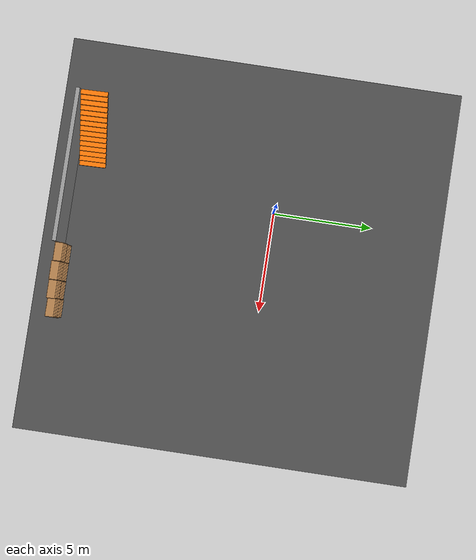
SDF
<sdf version="1.6">
 <world name="default">
  <model name="ground_plane">
   <static>1</static>
   <link name="link">
    <collision name="collision">
     <geometry><plane><normal>0 0 1</normal><size>100 100</size></plane></geometry>
     <surface>
      <contact><collide_bitmask>65535</collide_bitmask></contact>
      <friction><ode><mu>100</mu><mu2>50</mu2></ode></friction>
     </surface>
    </collision>
    <visual name="visual">
     <cast_shadows>0</cast_shadows>
     <geometry><plane><normal>0 0 1</normal><size>100 100</size></plane></geometry>
     <material>
      <script><uri>file://media/materials/scripts/gazebo.material</uri><name>Gazebo/Grey</name></script>
     </material>
    </visual>
   </link>
  </model>
  <model name="bookshelf">
   <static>1</static>
   <link name="link">
    <inertial><mass>1</mass></inertial>
    <collision name="back">
     <pose>0 0.005 0.6 0 -0 0</pose>
     <geometry><box><size>0.9 0.01 1.2</size></box></geometry>
    </collision>
    <visual name="visual1">
     <pose>0 0.005 0.6 0 -0 0</pose>
     <geometry><box><size>0.9 0.01 1.2</size></box></geometry>
     <material>
      <script><uri>file://media/materials/scripts/gazebo.material</uri><name>Gazebo/Wood</name></script>
     </material>
    </visual>
    <collision name="left_side">
     <pose>0.45 -0.195 0.6 0 -0 0</pose>
     <geometry><box><size>0.02 0.4 1.2</size></box></geometry>
    </collision>
    <visual name="visual2">
     <pose>0.45 -0.195 0.6 0 -0 0</pose>
     <geometry><box><size>0.02 0.4 1.2</size></box></geometry>
     <material>
      <script><uri>file://media/materials/scripts/gazebo.material</uri><name>Gazebo/Wood</name></script>
     </material>
    </visual>
    <collision name="right_side">
     <pose>-0.45 -0.195 0.6 0 -0 0</pose>
     <geometry><box><size>0.02 0.4 1.2</size></box></geometry>
    </collision>
    <visual name="visual3">
     <pose>-0.45 -0.195 0.6 0 -0 0</pose>
     <geometry><box><size>0.02 0.4 1.2</size></box></geometry>
     <material>
      <script><uri>file://media/materials/scripts/gazebo.material</uri><name>Gazebo/Wood</name></script>
     </material>
    </visual>
    <collision name="bottom">
     <pose>0 -0.195 0.03 0 -0 0</pose>
     <geometry><box><size>0.88 0.4 0.06</size></box></geometry>
    </collision>
    <visual name="visual4">
     <pose>0 -0.195 0.03 0 -0 0</pose>
     <geometry><box><size>0.88 0.4 0.06</size></box></geometry>
     <material>
      <script><uri>file://media/materials/scripts/gazebo.material</uri><name>Gazebo/Wood</name></script>
     </material>
    </visual>
    <collision name="top">
     <pose>0 -0.195 1.19 0 -0 0</pose>
     <geometry><box><size>0.88 0.4 0.02</size></box></geometry>
    </collision>
    <visual name="visual5">
     <pose>0 -0.195 1.19 0 -0 0</pose>
     <geometry><box><size>0.88 0.4 0.02</size></box></geometry>
     <material>
      <script><uri>file://media/materials/scripts/gazebo.material</uri><name>Gazebo/Wood</name></script>
     </material>
    </visual>
    <collision name="low_shelf">
     <pose>0 -0.195 0.43 0 -0 0</pose>
     <geometry><box><size>0.88 0.4 0.02</size></box></geometry>
    </collision>
    <visual name="visual6">
     <pose>0 -0.195 0.43 0 -0 0</pose>
     <geometry><box><size>0.88 0.4 0.02</size></box></geometry>
     <material>
      <script><uri>file://media/materials/scripts/gazebo.material</uri><name>Gazebo/Wood</name></script>
     </material>
    </visual>
    <collision name="high_shelf">
     <pose>0 -0.195 0.8 0 -0 0</pose>
     <geometry><box><size>0.88 0.4 0.02</size></box></geometry>
    </collision>
    <visual name="visual7">
     <pose>0 -0.195 0.8 0 -0 0</pose>
     <geometry><box><size>0.88 0.4 0.02</size></box></geometry>
     <material>
      <script><uri>file://media/materials/scripts/gazebo.material</uri><name>Gazebo/Wood</name></script>
     </material>
    </visual>
   </link>
   <pose>6.34692 -10.2259 0.027497 0 0 -3.13702</pose>
  </model>
  <model name="bookshelf_clone">
   <static>1</static>
   <link name="link">
    <inertial><mass>1</mass></inertial>
    <collision name="back">
     <pose>0 0.005 0.6 0 -0 0</pose>
     <geometry><box><size>0.9 0.01 1.2</size></box></geometry>
    </collision>
    <visual name="visual1">
     <pose>0 0.005 0.6 0 -0 0</pose>
     <geometry><box><size>0.9 0.01 1.2</size></box></geometry>
     <material>
      <script><uri>file://media/materials/scripts/gazebo.material</uri><name>Gazebo/Wood</name></script>
     </material>
    </visual>
    <collision name="left_side">
     <pose>0.45 -0.195 0.6 0 -0 0</pose>
     <geometry><box><size>0.02 0.4 1.2</size></box></geometry>
    </collision>
    <visual name="visual2">
     <pose>0.45 -0.195 0.6 0 -0 0</pose>
     <geometry><box><size>0.02 0.4 1.2</size></box></geometry>
     <material>
      <script><uri>file://media/materials/scripts/gazebo.material</uri><name>Gazebo/Wood</name></script>
     </material>
    </visual>
    <collision name="right_side">
     <pose>-0.45 -0.195 0.6 0 -0 0</pose>
     <geometry><box><size>0.02 0.4 1.2</size></box></geometry>
    </collision>
    <visual name="visual3">
     <pose>-0.45 -0.195 0.6 0 -0 0</pose>
     <geometry><box><size>0.02 0.4 1.2</size></box></geometry>
     <material>
      <script><uri>file://media/materials/scripts/gazebo.material</uri><name>Gazebo/Wood</name></script>
     </material>
    </visual>
    <collision name="bottom">
     <pose>0 -0.195 0.03 0 -0 0</pose>
     <geometry><box><size>0.88 0.4 0.06</size></box></geometry>
    </collision>
    <visual name="visual4">
     <pose>0 -0.195 0.03 0 -0 0</pose>
     <geometry><box><size>0.88 0.4 0.06</size></box></geometry>
     <material>
      <script><uri>file://media/materials/scripts/gazebo.material</uri><name>Gazebo/Wood</name></script>
     </material>
    </visual>
    <collision name="top">
     <pose>0 -0.195 1.19 0 -0 0</pose>
     <geometry><box><size>0.88 0.4 0.02</size></box></geometry>
    </collision>
    <visual name="visual5">
     <pose>0 -0.195 1.19 0 -0 0</pose>
     <geometry><box><size>0.88 0.4 0.02</size></box></geometry>
     <material>
      <script><uri>file://media/materials/scripts/gazebo.material</uri><name>Gazebo/Wood</name></script>
     </material>
    </visual>
    <collision name="low_shelf">
     <pose>0 -0.195 0.43 0 -0 0</pose>
     <geometry><box><size>0.88 0.4 0.02</size></box></geometry>
    </collision>
    <visual name="visual6">
     <pose>0 -0.195 0.43 0 -0 0</pose>
     <geometry><box><size>0.88 0.4 0.02</size></box></geometry>
     <material>
      <script><uri>file://media/materials/scripts/gazebo.material</uri><name>Gazebo/Wood</name></script>
     </material>
    </visual>
    <collision name="high_shelf">
     <pose>0 -0.195 0.8 0 -0 0</pose>
     <geometry><box><size>0.88 0.4 0.02</size></box></geometry>
    </collision>
    <visual name="visual7">
     <pose>0 -0.195 0.8 0 -0 0</pose>
     <geometry><box><size>0.88 0.4 0.02</size></box></geometry>
     <material>
      <script><uri>file://media/materials/scripts/gazebo.material</uri><name>Gazebo/Wood</name></script>
     </material>
    </visual>
   </link>
   <pose>5.43755 -10.2582 0.027497 0 0 -3.13702</pose>
  </model>
  <model name="bookshelf_clone_clone">
   <static>1</static>
   <link name="link">
    <inertial><mass>1</mass></inertial>
    <collision name="back">
     <pose>0 0.005 0.6 0 -0 0</pose>
     <geometry><box><size>0.9 0.01 1.2</size></box></geometry>
    </collision>
    <visual name="visual1">
     <pose>0 0.005 0.6 0 -0 0</pose>
     <geometry><box><size>0.9 0.01 1.2</size></box></geometry>
     <material>
      <script><uri>file://media/materials/scripts/gazebo.material</uri><name>Gazebo/Wood</name></script>
     </material>
    </visual>
    <collision name="left_side">
     <pose>0.45 -0.195 0.6 0 -0 0</pose>
     <geometry><box><size>0.02 0.4 1.2</size></box></geometry>
    </collision>
    <visual name="visual2">
     <pose>0.45 -0.195 0.6 0 -0 0</pose>
     <geometry><box><size>0.02 0.4 1.2</size></box></geometry>
     <material>
      <script><uri>file://media/materials/scripts/gazebo.material</uri><name>Gazebo/Wood</name></script>
     </material>
    </visual>
    <collision name="right_side">
     <pose>-0.45 -0.195 0.6 0 -0 0</pose>
     <geometry><box><size>0.02 0.4 1.2</size></box></geometry>
    </collision>
    <visual name="visual3">
     <pose>-0.45 -0.195 0.6 0 -0 0</pose>
     <geometry><box><size>0.02 0.4 1.2</size></box></geometry>
     <material>
      <script><uri>file://media/materials/scripts/gazebo.material</uri><name>Gazebo/Wood</name></script>
     </material>
    </visual>
    <collision name="bottom">
     <pose>0 -0.195 0.03 0 -0 0</pose>
     <geometry><box><size>0.88 0.4 0.06</size></box></geometry>
    </collision>
    <visual name="visual4">
     <pose>0 -0.195 0.03 0 -0 0</pose>
     <geometry><box><size>0.88 0.4 0.06</size></box></geometry>
     <material>
      <script><uri>file://media/materials/scripts/gazebo.material</uri><name>Gazebo/Wood</name></script>
     </material>
    </visual>
    <collision name="top">
     <pose>0 -0.195 1.19 0 -0 0</pose>
     <geometry><box><size>0.88 0.4 0.02</size></box></geometry>
    </collision>
    <visual name="visual5">
     <pose>0 -0.195 1.19 0 -0 0</pose>
     <geometry><box><size>0.88 0.4 0.02</size></box></geometry>
     <material>
      <script><uri>file://media/materials/scripts/gazebo.material</uri><name>Gazebo/Wood</name></script>
     </material>
    </visual>
    <collision name="low_shelf">
     <pose>0 -0.195 0.43 0 -0 0</pose>
     <geometry><box><size>0.88 0.4 0.02</size></box></geometry>
    </collision>
    <visual name="visual6">
     <pose>0 -0.195 0.43 0 -0 0</pose>
     <geometry><box><size>0.88 0.4 0.02</size></box></geometry>
     <material>
      <script><uri>file://media/materials/scripts/gazebo.material</uri><name>Gazebo/Wood</name></script>
     </material>
    </visual>
    <collision name="high_shelf">
     <pose>0 -0.195 0.8 0 -0 0</pose>
     <geometry><box><size>0.88 0.4 0.02</size></box></geometry>
    </collision>
    <visual name="visual7">
     <pose>0 -0.195 0.8 0 -0 0</pose>
     <geometry><box><size>0.88 0.4 0.02</size></box></geometry>
     <material>
      <script><uri>file://media/materials/scripts/gazebo.material</uri><name>Gazebo/Wood</name></script>
     </material>
    </visual>
   </link>
   <pose>4.50546 -10.2639 0.027497 0 0 -3.13702</pose>
  </model>
  <model name="bookshelf_clone_clone_0">
   <static>1</static>
   <link name="link">
    <inertial><mass>1</mass></inertial>
    <collision name="back">
     <pose>0 0.005 0.6 0 -0 0</pose>
     <geometry><box><size>0.9 0.01 1.2</size></box></geometry>
    </collision>
    <visual name="visual1">
     <pose>0 0.005 0.6 0 -0 0</pose>
     <geometry><box><size>0.9 0.01 1.2</size></box></geometry>
     <material>
      <script><uri>file://media/materials/scripts/gazebo.material</uri><name>Gazebo/Wood</name></script>
     </material>
    </visual>
    <collision name="left_side">
     <pose>0.45 -0.195 0.6 0 -0 0</pose>
     <geometry><box><size>0.02 0.4 1.2</size></box></geometry>
    </collision>
    <visual name="visual2">
     <pose>0.45 -0.195 0.6 0 -0 0</pose>
     <geometry><box><size>0.02 0.4 1.2</size></box></geometry>
     <material>
      <script><uri>file://media/materials/scripts/gazebo.material</uri><name>Gazebo/Wood</name></script>
     </material>
    </visual>
    <collision name="right_side">
     <pose>-0.45 -0.195 0.6 0 -0 0</pose>
     <geometry><box><size>0.02 0.4 1.2</size></box></geometry>
    </collision>
    <visual name="visual3">
     <pose>-0.45 -0.195 0.6 0 -0 0</pose>
     <geometry><box><size>0.02 0.4 1.2</size></box></geometry>
     <material>
      <script><uri>file://media/materials/scripts/gazebo.material</uri><name>Gazebo/Wood</name></script>
     </material>
    </visual>
    <collision name="bottom">
     <pose>0 -0.195 0.03 0 -0 0</pose>
     <geometry><box><size>0.88 0.4 0.06</size></box></geometry>
    </collision>
    <visual name="visual4">
     <pose>0 -0.195 0.03 0 -0 0</pose>
     <geometry><box><size>0.88 0.4 0.06</size></box></geometry>
     <material>
      <script><uri>file://media/materials/scripts/gazebo.material</uri><name>Gazebo/Wood</name></script>
     </material>
    </visual>
    <collision name="top">
     <pose>0 -0.195 1.19 0 -0 0</pose>
     <geometry><box><size>0.88 0.4 0.02</size></box></geometry>
    </collision>
    <visual name="visual5">
     <pose>0 -0.195 1.19 0 -0 0</pose>
     <geometry><box><size>0.88 0.4 0.02</size></box></geometry>
     <material>
      <script><uri>file://media/materials/scripts/gazebo.material</uri><name>Gazebo/Wood</name></script>
     </material>
    </visual>
    <collision name="low_shelf">
     <pose>0 -0.195 0.43 0 -0 0</pose>
     <geometry><box><size>0.88 0.4 0.02</size></box></geometry>
    </collision>
    <visual name="visual6">
     <pose>0 -0.195 0.43 0 -0 0</pose>
     <geometry><box><size>0.88 0.4 0.02</size></box></geometry>
     <material>
      <script><uri>file://media/materials/scripts/gazebo.material</uri><name>Gazebo/Wood</name></script>
     </material>
    </visual>
    <collision name="high_shelf">
     <pose>0 -0.195 0.8 0 -0 0</pose>
     <geometry><box><size>0.88 0.4 0.02</size></box></geometry>
    </collision>
    <visual name="visual7">
     <pose>0 -0.195 0.8 0 -0 0</pose>
     <geometry><box><size>0.88 0.4 0.02</size></box></geometry>
     <material>
      <script><uri>file://media/materials/scripts/gazebo.material</uri><name>Gazebo/Wood</name></script>
     </material>
    </visual>
   </link>
   <pose>3.59893 -10.2632 0.027497 0 0 -3.13702</pose>
  </model>
  <model name="grey_wall">
   <static>1</static>
   <link name="link">
    <pose>0 0 1.4 0 -0 0</pose>
    <collision name="collision"><geometry><box><size>7.5 0.2 2.8</size></box></geometry></collision>
    <visual name="visual">
     <cast_shadows>0</cast_shadows>
     <geometry><box><size>7.5 0.2 2.8</size></box></geometry>
     <material>
      <script>
       <uri>model://grey_wall/materials/scripts</uri>
       <uri>model://grey_wall/materials/textures</uri>
       <name>vrc/grey_wall</name>
      </script>
     </material>
    </visual>
   </link>
   <pose>-0.6582 -10.3022 0 0 -0 0</pose>
  </model>
  <model name="asphalt_plane">
   <static>1</static>
   <link name="link">
    <collision name="collision"><geometry><box><size>20 20 0.1</size></box></geometry></collision>
    <visual name="visual">
     <cast_shadows>0</cast_shadows>
     <geometry><box><size>20 20 0.1</size></box></geometry>
     <material>
      <script>
       <uri>model://asphalt_plane/materials/scripts</uri>
       <uri>model://asphalt_plane/materials/textures</uri>
       <name>vrc/asphalt</name>
      </script>
     </material>
    </visual>
   </link>
   <pose>2.60888 -1.39738 0 0 -0 0</pose>
  </model>
  <model name="bookshelf_clone_clone_clone_1_clone_0_clone_clone_clone_0">
   <static>1</static>
   <link name="link">
    <inertial><mass>1</mass></inertial>
    <collision name="back">
     <pose>0 0.005 0.6 0 -0 0</pose>
     <geometry><box><size>0.9 0.01 1.2</size></box></geometry>
    </collision>
    <visual name="visual1">
     <pose>0 0.005 0.6 0 -0 0</pose>
     <geometry><box><size>0.9 0.01 1.2</size></box></geometry>
     <material>
      <script><uri>file://media/materials/scripts/gazebo.material</uri><name>Gazebo/Wood</name></script>
     </material>
    </visual>
    <collision name="left_side">
     <pose>0.45 -0.195 0.6 0 -0 0</pose>
     <geometry><box><size>0.02 0.4 1.2</size></box></geometry>
    </collision>
    <visual name="visual2">
     <pose>0.45 -0.195 0.6 0 -0 0</pose>
     <geometry><box><size>0.02 0.4 1.2</size></box></geometry>
     <material>
      <script><uri>file://media/materials/scripts/gazebo.material</uri><name>Gazebo/Wood</name></script>
     </material>
    </visual>
    <collision name="right_side">
     <pose>-0.45 -0.195 0.6 0 -0 0</pose>
     <geometry><box><size>0.02 0.4 1.2</size></box></geometry>
    </collision>
    <visual name="visual3">
     <pose>-0.45 -0.195 0.6 0 -0 0</pose>
     <geometry><box><size>0.02 0.4 1.2</size></box></geometry>
     <material>
      <script><uri>file://media/materials/scripts/gazebo.material</uri><name>Gazebo/Wood</name></script>
     </material>
    </visual>
    <collision name="bottom">
     <pose>0 -0.195 0.03 0 -0 0</pose>
     <geometry><box><size>0.88 0.4 0.06</size></box></geometry>
    </collision>
    <visual name="visual4">
     <pose>0 -0.195 0.03 0 -0 0</pose>
     <geometry><box><size>0.88 0.4 0.06</size></box></geometry>
     <material>
      <script><uri>file://media/materials/scripts/gazebo.material</uri><name>Gazebo/Wood</name></script>
     </material>
    </visual>
    <collision name="top">
     <pose>0 -0.195 1.19 0 -0 0</pose>
     <geometry><box><size>0.88 0.4 0.02</size></box></geometry>
    </collision>
    <visual name="visual5">
     <pose>0 -0.195 1.19 0 -0 0</pose>
     <geometry><box><size>0.88 0.4 0.02</size></box></geometry>
     <material>
      <script><uri>file://media/materials/scripts/gazebo.material</uri><name>Gazebo/Wood</name></script>
     </material>
    </visual>
    <collision name="low_shelf">
     <pose>0 -0.195 0.43 0 -0 0</pose>
     <geometry><box><size>0.88 0.4 0.02</size></box></geometry>
    </collision>
    <visual name="visual6">
     <pose>0 -0.195 0.43 0 -0 0</pose>
     <geometry><box><size>0.88 0.4 0.02</size></box></geometry>
     <material>
      <script><uri>file://media/materials/scripts/gazebo.material</uri><name>Gazebo/Wood</name></script>
     </material>
    </visual>
    <collision name="high_shelf">
     <pose>0 -0.195 0.8 0 -0 0</pose>
     <geometry><box><size>0.88 0.4 0.02</size></box></geometry>
    </collision>
    <visual name="visual7">
     <pose>0 -0.195 0.8 0 -0 0</pose>
     <geometry><box><size>0.88 0.4 0.02</size></box></geometry>
     <material>
      <script><uri>file://media/materials/scripts/gazebo.material</uri><name>Gazebo/Wood</name></script>
     </material>
    </visual>
   </link>
   <pose>6.30434 -10.224 1.22391 0 0 -3.13702</pose>
  </model>
  <model name="bookshelf_clone_clone_clone_1_clone_0_clone_clone_clone_0_clone">
   <static>1</static>
   <link name="link">
    <inertial><mass>1</mass></inertial>
    <collision name="back">
     <pose>0 0.005 0.6 0 -0 0</pose>
     <geometry><box><size>0.9 0.01 1.2</size></box></geometry>
    </collision>
    <visual name="visual1">
     <pose>0 0.005 0.6 0 -0 0</pose>
     <geometry><box><size>0.9 0.01 1.2</size></box></geometry>
     <material>
      <script><uri>file://media/materials/scripts/gazebo.material</uri><name>Gazebo/Wood</name></script>
     </material>
    </visual>
    <collision name="left_side">
     <pose>0.45 -0.195 0.6 0 -0 0</pose>
     <geometry><box><size>0.02 0.4 1.2</size></box></geometry>
    </collision>
    <visual name="visual2">
     <pose>0.45 -0.195 0.6 0 -0 0</pose>
     <geometry><box><size>0.02 0.4 1.2</size></box></geometry>
     <material>
      <script><uri>file://media/materials/scripts/gazebo.material</uri><name>Gazebo/Wood</name></script>
     </material>
    </visual>
    <collision name="right_side">
     <pose>-0.45 -0.195 0.6 0 -0 0</pose>
     <geometry><box><size>0.02 0.4 1.2</size></box></geometry>
    </collision>
    <visual name="visual3">
     <pose>-0.45 -0.195 0.6 0 -0 0</pose>
     <geometry><box><size>0.02 0.4 1.2</size></box></geometry>
     <material>
      <script><uri>file://media/materials/scripts/gazebo.material</uri><name>Gazebo/Wood</name></script>
     </material>
    </visual>
    <collision name="bottom">
     <pose>0 -0.195 0.03 0 -0 0</pose>
     <geometry><box><size>0.88 0.4 0.06</size></box></geometry>
    </collision>
    <visual name="visual4">
     <pose>0 -0.195 0.03 0 -0 0</pose>
     <geometry><box><size>0.88 0.4 0.06</size></box></geometry>
     <material>
      <script><uri>file://media/materials/scripts/gazebo.material</uri><name>Gazebo/Wood</name></script>
     </material>
    </visual>
    <collision name="top">
     <pose>0 -0.195 1.19 0 -0 0</pose>
     <geometry><box><size>0.88 0.4 0.02</size></box></geometry>
    </collision>
    <visual name="visual5">
     <pose>0 -0.195 1.19 0 -0 0</pose>
     <geometry><box><size>0.88 0.4 0.02</size></box></geometry>
     <material>
      <script><uri>file://media/materials/scripts/gazebo.material</uri><name>Gazebo/Wood</name></script>
     </material>
    </visual>
    <collision name="low_shelf">
     <pose>0 -0.195 0.43 0 -0 0</pose>
     <geometry><box><size>0.88 0.4 0.02</size></box></geometry>
    </collision>
    <visual name="visual6">
     <pose>0 -0.195 0.43 0 -0 0</pose>
     <geometry><box><size>0.88 0.4 0.02</size></box></geometry>
     <material>
      <script><uri>file://media/materials/scripts/gazebo.material</uri><name>Gazebo/Wood</name></script>
     </material>
    </visual>
    <collision name="high_shelf">
     <pose>0 -0.195 0.8 0 -0 0</pose>
     <geometry><box><size>0.88 0.4 0.02</size></box></geometry>
    </collision>
    <visual name="visual7">
     <pose>0 -0.195 0.8 0 -0 0</pose>
     <geometry><box><size>0.88 0.4 0.02</size></box></geometry>
     <material>
      <script><uri>file://media/materials/scripts/gazebo.material</uri><name>Gazebo/Wood</name></script>
     </material>
    </visual>
   </link>
   <pose>5.4143 -10.2944 1.22391 0 0 -3.13702</pose>
  </model>
  <model name="bookshelf_clone_clone_clone_1_clone_0_clone_clone_clone_0_clone_0">
   <static>1</static>
   <link name="link">
    <inertial><mass>1</mass></inertial>
    <collision name="back">
     <pose>0 0.005 0.6 0 -0 0</pose>
     <geometry><box><size>0.9 0.01 1.2</size></box></geometry>
    </collision>
    <visual name="visual1">
     <pose>0 0.005 0.6 0 -0 0</pose>
     <geometry><box><size>0.9 0.01 1.2</size></box></geometry>
     <material>
      <script><uri>file://media/materials/scripts/gazebo.material</uri><name>Gazebo/Wood</name></script>
     </material>
    </visual>
    <collision name="left_side">
     <pose>0.45 -0.195 0.6 0 -0 0</pose>
     <geometry><box><size>0.02 0.4 1.2</size></box></geometry>
    </collision>
    <visual name="visual2">
     <pose>0.45 -0.195 0.6 0 -0 0</pose>
     <geometry><box><size>0.02 0.4 1.2</size></box></geometry>
     <material>
      <script><uri>file://media/materials/scripts/gazebo.material</uri><name>Gazebo/Wood</name></script>
     </material>
    </visual>
    <collision name="right_side">
     <pose>-0.45 -0.195 0.6 0 -0 0</pose>
     <geometry><box><size>0.02 0.4 1.2</size></box></geometry>
    </collision>
    <visual name="visual3">
     <pose>-0.45 -0.195 0.6 0 -0 0</pose>
     <geometry><box><size>0.02 0.4 1.2</size></box></geometry>
     <material>
      <script><uri>file://media/materials/scripts/gazebo.material</uri><name>Gazebo/Wood</name></script>
     </material>
    </visual>
    <collision name="bottom">
     <pose>0 -0.195 0.03 0 -0 0</pose>
     <geometry><box><size>0.88 0.4 0.06</size></box></geometry>
    </collision>
    <visual name="visual4">
     <pose>0 -0.195 0.03 0 -0 0</pose>
     <geometry><box><size>0.88 0.4 0.06</size></box></geometry>
     <material>
      <script><uri>file://media/materials/scripts/gazebo.material</uri><name>Gazebo/Wood</name></script>
     </material>
    </visual>
    <collision name="top">
     <pose>0 -0.195 1.19 0 -0 0</pose>
     <geometry><box><size>0.88 0.4 0.02</size></box></geometry>
    </collision>
    <visual name="visual5">
     <pose>0 -0.195 1.19 0 -0 0</pose>
     <geometry><box><size>0.88 0.4 0.02</size></box></geometry>
     <material>
      <script><uri>file://media/materials/scripts/gazebo.material</uri><name>Gazebo/Wood</name></script>
     </material>
    </visual>
    <collision name="low_shelf">
     <pose>0 -0.195 0.43 0 -0 0</pose>
     <geometry><box><size>0.88 0.4 0.02</size></box></geometry>
    </collision>
    <visual name="visual6">
     <pose>0 -0.195 0.43 0 -0 0</pose>
     <geometry><box><size>0.88 0.4 0.02</size></box></geometry>
     <material>
      <script><uri>file://media/materials/scripts/gazebo.material</uri><name>Gazebo/Wood</name></script>
     </material>
    </visual>
    <collision name="high_shelf">
     <pose>0 -0.195 0.8 0 -0 0</pose>
     <geometry><box><size>0.88 0.4 0.02</size></box></geometry>
    </collision>
    <visual name="visual7">
     <pose>0 -0.195 0.8 0 -0 0</pose>
     <geometry><box><size>0.88 0.4 0.02</size></box></geometry>
     <material>
      <script><uri>file://media/materials/scripts/gazebo.material</uri><name>Gazebo/Wood</name></script>
     </material>
    </visual>
   </link>
   <pose>4.49862 -10.3184 1.22391 0 0 -3.13702</pose>
  </model>
  <model name="bookshelf_clone_clone_clone_1_clone_0_clone_clone_clone_0_clone_0_clone">
   <static>1</static>
   <link name="link">
    <inertial><mass>1</mass></inertial>
    <collision name="back">
     <pose>0 0.005 0.6 0 -0 0</pose>
     <geometry><box><size>0.9 0.01 1.2</size></box></geometry>
    </collision>
    <visual name="visual1">
     <pose>0 0.005 0.6 0 -0 0</pose>
     <geometry><box><size>0.9 0.01 1.2</size></box></geometry>
     <material>
      <script><uri>file://media/materials/scripts/gazebo.material</uri><name>Gazebo/Wood</name></script>
     </material>
    </visual>
    <collision name="left_side">
     <pose>0.45 -0.195 0.6 0 -0 0</pose>
     <geometry><box><size>0.02 0.4 1.2</size></box></geometry>
    </collision>
    <visual name="visual2">
     <pose>0.45 -0.195 0.6 0 -0 0</pose>
     <geometry><box><size>0.02 0.4 1.2</size></box></geometry>
     <material>
      <script><uri>file://media/materials/scripts/gazebo.material</uri><name>Gazebo/Wood</name></script>
     </material>
    </visual>
    <collision name="right_side">
     <pose>-0.45 -0.195 0.6 0 -0 0</pose>
     <geometry><box><size>0.02 0.4 1.2</size></box></geometry>
    </collision>
    <visual name="visual3">
     <pose>-0.45 -0.195 0.6 0 -0 0</pose>
     <geometry><box><size>0.02 0.4 1.2</size></box></geometry>
     <material>
      <script><uri>file://media/materials/scripts/gazebo.material</uri><name>Gazebo/Wood</name></script>
     </material>
    </visual>
    <collision name="bottom">
     <pose>0 -0.195 0.03 0 -0 0</pose>
     <geometry><box><size>0.88 0.4 0.06</size></box></geometry>
    </collision>
    <visual name="visual4">
     <pose>0 -0.195 0.03 0 -0 0</pose>
     <geometry><box><size>0.88 0.4 0.06</size></box></geometry>
     <material>
      <script><uri>file://media/materials/scripts/gazebo.material</uri><name>Gazebo/Wood</name></script>
     </material>
    </visual>
    <collision name="top">
     <pose>0 -0.195 1.19 0 -0 0</pose>
     <geometry><box><size>0.88 0.4 0.02</size></box></geometry>
    </collision>
    <visual name="visual5">
     <pose>0 -0.195 1.19 0 -0 0</pose>
     <geometry><box><size>0.88 0.4 0.02</size></box></geometry>
     <material>
      <script><uri>file://media/materials/scripts/gazebo.material</uri><name>Gazebo/Wood</name></script>
     </material>
    </visual>
    <collision name="low_shelf">
     <pose>0 -0.195 0.43 0 -0 0</pose>
     <geometry><box><size>0.88 0.4 0.02</size></box></geometry>
    </collision>
    <visual name="visual6">
     <pose>0 -0.195 0.43 0 -0 0</pose>
     <geometry><box><size>0.88 0.4 0.02</size></box></geometry>
     <material>
      <script><uri>file://media/materials/scripts/gazebo.material</uri><name>Gazebo/Wood</name></script>
     </material>
    </visual>
    <collision name="high_shelf">
     <pose>0 -0.195 0.8 0 -0 0</pose>
     <geometry><box><size>0.88 0.4 0.02</size></box></geometry>
    </collision>
    <visual name="visual7">
     <pose>0 -0.195 0.8 0 -0 0</pose>
     <geometry><box><size>0.88 0.4 0.02</size></box></geometry>
     <material>
      <script><uri>file://media/materials/scripts/gazebo.material</uri><name>Gazebo/Wood</name></script>
     </material>
    </visual>
   </link>
   <pose>3.57647 -10.2753 1.22391 0 0 -3.13702</pose>
  </model>
  <model name="Untitled_0_clone">
   <pose>-2.711 -9.48853 0 0 -0 1.59587</pose>
   <link name="Stairs_1">
    <visual name="Stairs_1_Visual_0">
     <pose>0 -1.59433 0.083333 0 -0 -3.14159</pose>
     <geometry><box><size>1.332 0.227762 0.166667</size></box></geometry>
     <material>
      <script><uri>file://media/materials/scripts/gazebo.material</uri><name>Gazebo/Grey</name></script>
      <ambient>0.996078 0.47451 0.0196078 1</ambient>
     </material>
     <meta><layer>0</layer></meta>
    </visual>
    <collision name="Stairs_1_Collision_0">
     <geometry><box><size>1.332 0.227762 0.166667</size></box></geometry>
     <pose>0 -1.59433 0.083333 0 -0 -3.14159</pose>
    </collision>
    <visual name="Stairs_1_Visual_1">
     <pose>0 -1.36657 0.25 0 -0 -3.14159</pose>
     <geometry><box><size>1.332 0.227762 0.166667</size></box></geometry>
     <material>
      <script><uri>file://media/materials/scripts/gazebo.material</uri><name>Gazebo/Grey</name></script>
      <ambient>0.996078 0.47451 0.0196078 1</ambient>
     </material>
     <meta><layer>0</layer></meta>
    </visual>
    <collision name="Stairs_1_Collision_1">
     <geometry><box><size>1.332 0.227762 0.166667</size></box></geometry>
     <pose>0 -1.36657 0.25 0 -0 -3.14159</pose>
    </collision>
    <visual name="Stairs_1_Visual_2">
     <pose>0 -1.13881 0.416667 0 -0 -3.14159</pose>
     <geometry><box><size>1.332 0.227762 0.166667</size></box></geometry>
     <material>
      <script><uri>file://media/materials/scripts/gazebo.material</uri><name>Gazebo/Grey</name></script>
      <ambient>0.996078 0.47451 0.0196078 1</ambient>
     </material>
     <meta><layer>0</layer></meta>
    </visual>
    <collision name="Stairs_1_Collision_2">
     <geometry><box><size>1.332 0.227762 0.166667</size></box></geometry>
     <pose>0 -1.13881 0.416667 0 -0 -3.14159</pose>
    </collision>
    <visual name="Stairs_1_Visual_3">
     <pose>0 -0.911047 0.583333 0 -0 -3.14159</pose>
     <geometry><box><size>1.332 0.227762 0.166667</size></box></geometry>
     <material>
      <script><uri>file://media/materials/scripts/gazebo.material</uri><name>Gazebo/Grey</name></script>
      <ambient>0.996078 0.47451 0.0196078 1</ambient>
     </material>
     <meta><layer>0</layer></meta>
    </visual>
    <collision name="Stairs_1_Collision_3">
     <geometry><box><size>1.332 0.227762 0.166667</size></box></geometry>
     <pose>0 -0.911047 0.583333 0 -0 -3.14159</pose>
    </collision>
    <visual name="Stairs_1_Visual_4">
     <pose>0 -0.683285 0.75 0 -0 -3.14159</pose>
     <geometry><box><size>1.332 0.227762 0.166667</size></box></geometry>
     <material>
      <script><uri>file://media/materials/scripts/gazebo.material</uri><name>Gazebo/Grey</name></script>
      <ambient>0.996078 0.47451 0.0196078 1</ambient>
     </material>
     <meta><layer>0</layer></meta>
    </visual>
    <collision name="Stairs_1_Collision_4">
     <geometry><box><size>1.332 0.227762 0.166667</size></box></geometry>
     <pose>0 -0.683285 0.75 0 -0 -3.14159</pose>
    </collision>
    <visual name="Stairs_1_Visual_5">
     <pose>0 -0.455523 0.916667 0 -0 -3.14159</pose>
     <geometry><box><size>1.332 0.227762 0.166667</size></box></geometry>
     <material>
      <script><uri>file://media/materials/scripts/gazebo.material</uri><name>Gazebo/Grey</name></script>
      <ambient>0.996078 0.47451 0.0196078 1</ambient>
     </material>
     <meta><layer>0</layer></meta>
    </visual>
    <collision name="Stairs_1_Collision_5">
     <geometry><box><size>1.332 0.227762 0.166667</size></box></geometry>
     <pose>0 -0.455523 0.916667 0 -0 -3.14159</pose>
    </collision>
    <visual name="Stairs_1_Visual_6">
     <pose>0 -0.227762 1.08333 0 -0 -3.14159</pose>
     <geometry><box><size>1.332 0.227762 0.166667</size></box></geometry>
     <material>
      <script><uri>file://media/materials/scripts/gazebo.material</uri><name>Gazebo/Grey</name></script>
      <ambient>0.996078 0.47451 0.0196078 1</ambient>
     </material>
     <meta><layer>0</layer></meta>
    </visual>
    <collision name="Stairs_1_Collision_6">
     <geometry><box><size>1.332 0.227762 0.166667</size></box></geometry>
     <pose>0 -0.227762 1.08333 0 -0 -3.14159</pose>
    </collision>
    <visual name="Stairs_1_Visual_7">
     <pose>0 0 1.25 0 -0 -3.14159</pose>
     <geometry><box><size>1.332 0.227762 0.166667</size></box></geometry>
     <material>
      <script><uri>file://media/materials/scripts/gazebo.material</uri><name>Gazebo/Grey</name></script>
      <ambient>0.996078 0.47451 0.0196078 1</ambient>
     </material>
     <meta><layer>0</layer></meta>
    </visual>
    <collision name="Stairs_1_Collision_7">
     <geometry><box><size>1.332 0.227762 0.166667</size></box></geometry>
     <pose>0 0 1.25 0 -0 -3.14159</pose>
    </collision>
    <visual name="Stairs_1_Visual_8">
     <pose>0 0.227762 1.41667 0 -0 -3.14159</pose>
     <geometry><box><size>1.332 0.227762 0.166667</size></box></geometry>
     <material>
      <script><uri>file://media/materials/scripts/gazebo.material</uri><name>Gazebo/Grey</name></script>
      <ambient>0.996078 0.47451 0.0196078 1</ambient>
     </material>
     <meta><layer>0</layer></meta>
    </visual>
    <collision name="Stairs_1_Collision_8">
     <geometry><box><size>1.332 0.227762 0.166667</size></box></geometry>
     <pose>0 0.227762 1.41667 0 -0 -3.14159</pose>
    </collision>
    <visual name="Stairs_1_Visual_9">
     <pose>0 0.455523 1.58333 0 -0 -3.14159</pose>
     <geometry><box><size>1.332 0.227762 0.166667</size></box></geometry>
     <material>
      <script><uri>file://media/materials/scripts/gazebo.material</uri><name>Gazebo/Grey</name></script>
      <ambient>0.996078 0.47451 0.0196078 1</ambient>
     </material>
     <meta><layer>0</layer></meta>
    </visual>
    <collision name="Stairs_1_Collision_9">
     <geometry><box><size>1.332 0.227762 0.166667</size></box></geometry>
     <pose>0 0.455523 1.58333 0 -0 -3.14159</pose>
    </collision>
    <visual name="Stairs_1_Visual_10">
     <pose>0 0.683285 1.75 0 -0 -3.14159</pose>
     <geometry><box><size>1.332 0.227762 0.166667</size></box></geometry>
     <material>
      <script><uri>file://media/materials/scripts/gazebo.material</uri><name>Gazebo/Grey</name></script>
      <ambient>0.996078 0.47451 0.0196078 1</ambient>
     </material>
     <meta><layer>0</layer></meta>
    </visual>
    <collision name="Stairs_1_Collision_10">
     <geometry><box><size>1.332 0.227762 0.166667</size></box></geometry>
     <pose>0 0.683285 1.75 0 -0 -3.14159</pose>
    </collision>
    <visual name="Stairs_1_Visual_11">
     <pose>0 0.911047 1.91667 0 -0 -3.14159</pose>
     <geometry><box><size>1.332 0.227762 0.166667</size></box></geometry>
     <material>
      <script><uri>file://media/materials/scripts/gazebo.material</uri><name>Gazebo/Grey</name></script>
      <ambient>0.996078 0.47451 0.0196078 1</ambient>
     </material>
     <meta><layer>0</layer></meta>
    </visual>
    <collision name="Stairs_1_Collision_11">
     <geometry><box><size>1.332 0.227762 0.166667</size></box></geometry>
     <pose>0 0.911047 1.91667 0 -0 -3.14159</pose>
    </collision>
    <visual name="Stairs_1_Visual_12">
     <pose>0 1.13881 2.08333 0 -0 -3.14159</pose>
     <geometry><box><size>1.332 0.227762 0.166667</size></box></geometry>
     <material>
      <script><uri>file://media/materials/scripts/gazebo.material</uri><name>Gazebo/Grey</name></script>
      <ambient>0.996078 0.47451 0.0196078 1</ambient>
     </material>
     <meta><layer>0</layer></meta>
    </visual>
    <collision name="Stairs_1_Collision_12">
     <geometry><box><size>1.332 0.227762 0.166667</size></box></geometry>
     <pose>0 1.13881 2.08333 0 -0 -3.14159</pose>
    </collision>
    <visual name="Stairs_1_Visual_13">
     <pose>0 1.36657 2.25 0 -0 -3.14159</pose>
     <geometry><box><size>1.332 0.227762 0.166667</size></box></geometry>
     <material>
      <script><uri>file://media/materials/scripts/gazebo.material</uri><name>Gazebo/Grey</name></script>
      <ambient>0.996078 0.47451 0.0196078 1</ambient>
     </material>
     <meta><layer>0</layer></meta>
    </visual>
    <collision name="Stairs_1_Collision_13">
     <geometry><box><size>1.332 0.227762 0.166667</size></box></geometry>
     <pose>0 1.36657 2.25 0 -0 -3.14159</pose>
    </collision>
    <visual name="Stairs_1_Visual_14">
     <pose>0 1.59433 2.41667 0 -0 -3.14159</pose>
     <geometry><box><size>1.332 0.227762 0.166667</size></box></geometry>
     <material>
      <script><uri>file://media/materials/scripts/gazebo.material</uri><name>Gazebo/Grey</name></script>
      <ambient>0.996078 0.47451 0.0196078 1</ambient>
     </material>
     <meta><layer>0</layer></meta>
    </visual>
    <collision name="Stairs_1_Collision_14">
     <geometry><box><size>1.332 0.227762 0.166667</size></box></geometry>
     <pose>0 1.59433 2.41667 0 -0 -3.14159</pose>
    </collision>
   </link>
   <static>1</static>
  </model>
 </world>
</sdf>
